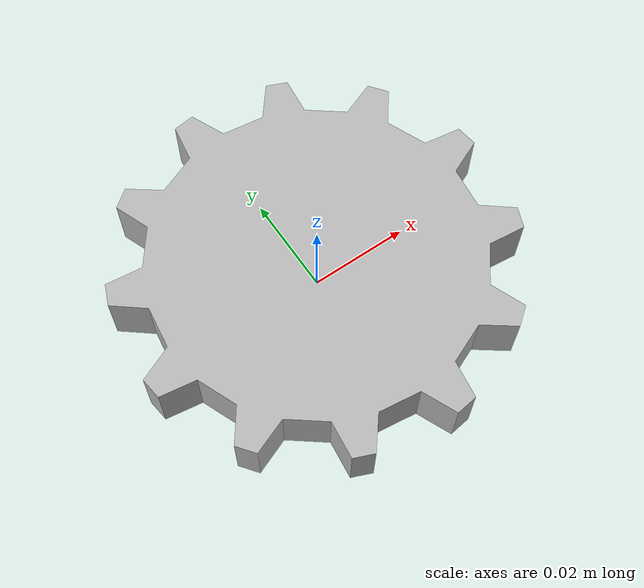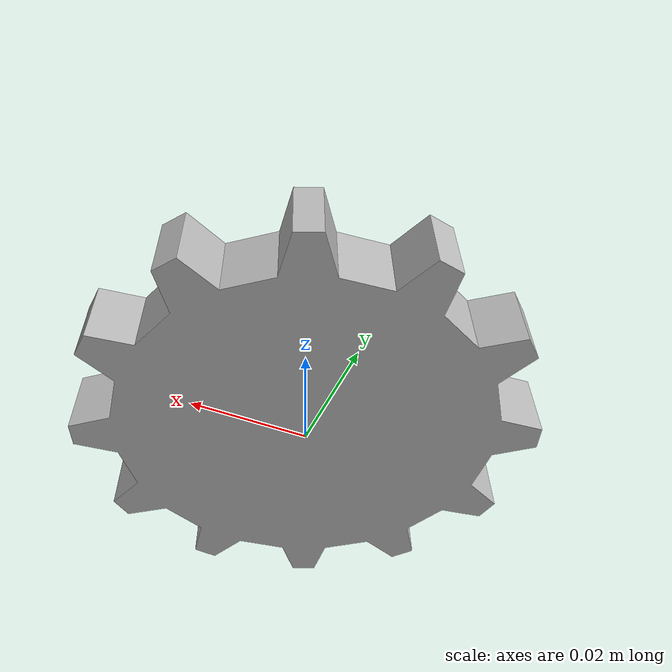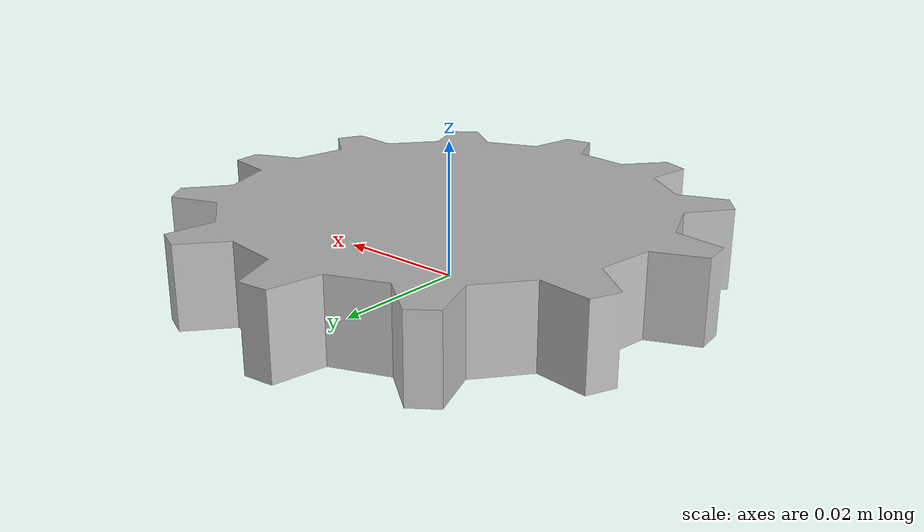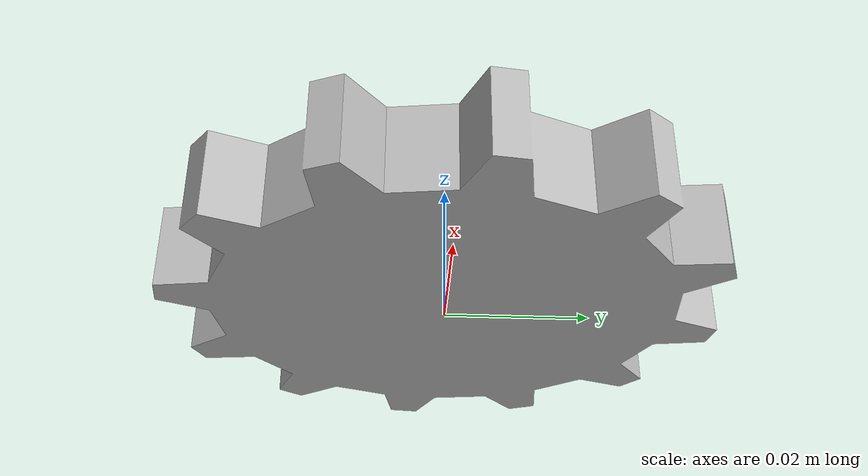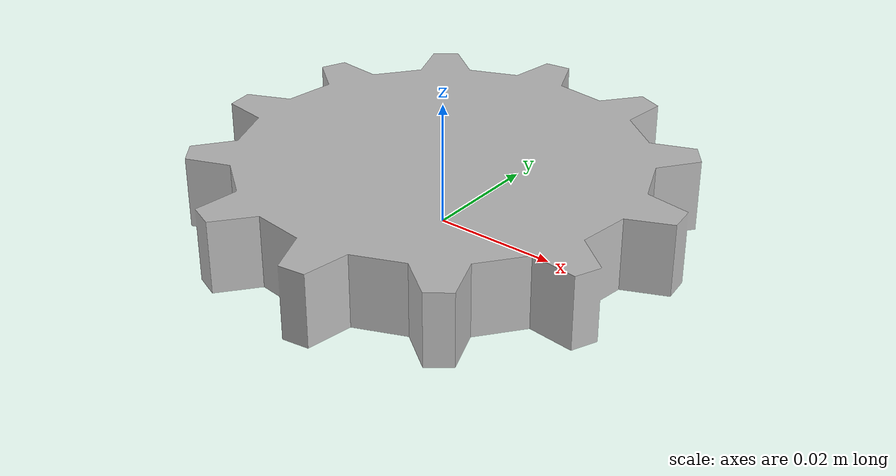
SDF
<?xml version="1.0" ?>
<sdf version="1.6">
  <model name="gear_part">
    <link name="link">
      <inertial>
        <pose>0 0 0.005875 0 0 0</pose>
        <mass>0.5</mass>
        <inertia>
          <ixx>0.00019820251</ixx>
          <ixy>0</ixy>
          <ixz>0</ixz>
          <iyy>0.00019820251</iyy>
          <iyz>0</iyz>
          <izz>0.00038440503</izz>
        </inertia>
      </inertial>

      <collision name="collision">
        <pose>0 0 0.005875 0 0 0</pose>
        <geometry>
          <cylinder>
            <length>0.012</length>
            <radius>0.0392125</radius>
          </cylinder>
        </geometry>
        <surface>
          <contact>
            <ode>
              <max_vel>0.1</max_vel>
              <min_depth>0.001</min_depth>
            </ode>
          </contact>
        </surface>
      </collision>

      <visual name="visual">
         <geometry>
           <mesh>
             <uri>model://gear_part/meshes/gear.dae</uri>
             <scale>0.25 0.25 0.25</scale>
           </mesh>
         </geometry>
        <material>
          <script>
            <uri>model://arm_part/materials/scripts</uri>
            <uri>model://arm_part/materials/textures</uri>
            <name>ArmPart/Diffuse</name>
          </script>
        </material>
       </visual>
    </link>
  </model>
</sdf>
